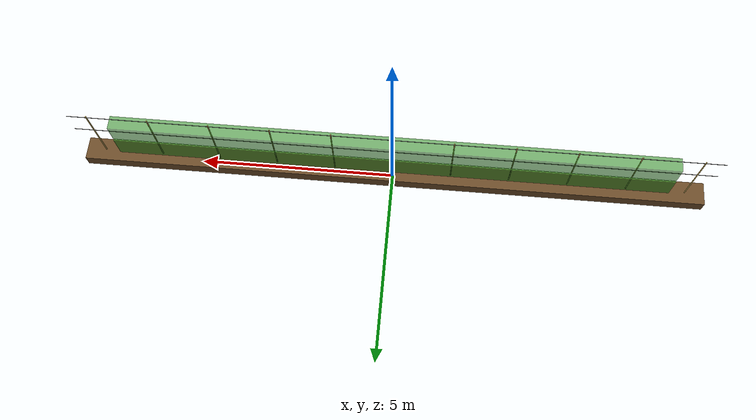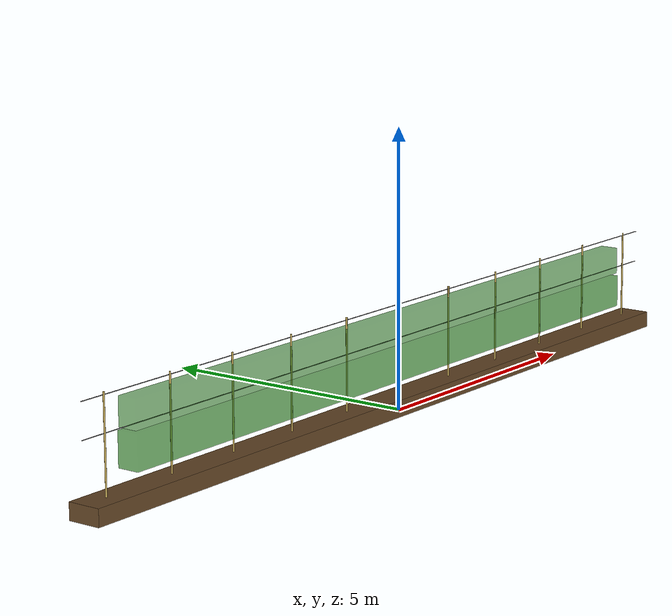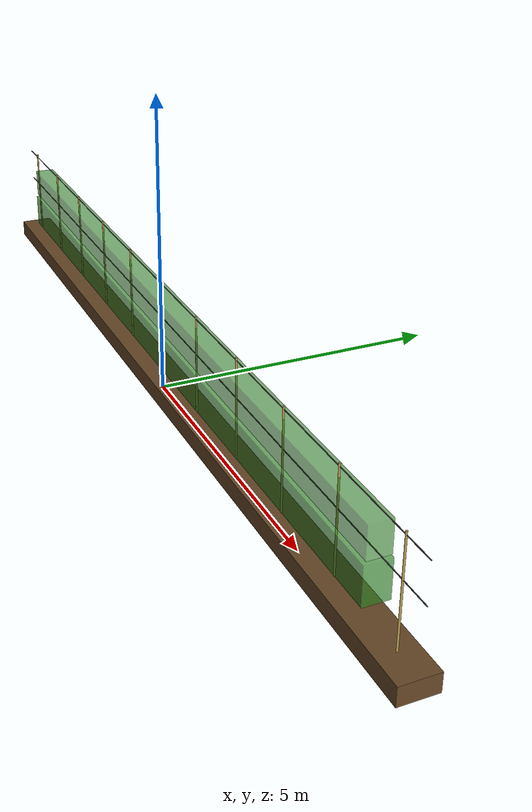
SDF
<?xml version="1.0" ?>
<!--
  黄瓜种植行模型 (Cucumber Row)
  长度: 16m (沿X轴), 高1.8m
  ★ 第十三次缩小: 36m→16m, 配合缩小后的大棚(20×12m)
  包含: 竹竿支撑 + 横向牵引线 + 叶片遮挡块
-->
<sdf version="1.6">
  <model name="cucumber_row">
    <static>true</static>

    <!-- 底部土垄 -->
    <link name="soil_ridge">
      <pose>0 0 0.15 0 0 0</pose>
      <collision name="c"><geometry><box><size>16 0.6 0.3</size></box></geometry></collision>
      <visual name="v"><geometry><box><size>16 0.6 0.3</size></box></geometry>
        <material><ambient>0.3 0.2 0.1 1</ambient><diffuse>0.4 0.28 0.15 1</diffuse></material>
      </visual>
    </link>

    <!-- 竹竿支撑 (每隔1.5m, 共11根, x从-7.5到7.5) -->
    <link name="stake_0"><pose>-7.5 0 1.05 0 0 0</pose><collision name="c"><geometry><cylinder><radius>0.015</radius><length>1.8</length></cylinder></geometry></collision><visual name="v"><geometry><cylinder><radius>0.015</radius><length>1.8</length></cylinder></geometry><material><ambient>0.6 0.5 0.2 1</ambient><diffuse>0.7 0.6 0.3 1</diffuse></material></visual></link>
    <link name="stake_1"><pose>-6.0 0 1.05 0 0 0</pose><collision name="c"><geometry><cylinder><radius>0.015</radius><length>1.8</length></cylinder></geometry></collision><visual name="v"><geometry><cylinder><radius>0.015</radius><length>1.8</length></cylinder></geometry><material><ambient>0.6 0.5 0.2 1</ambient><diffuse>0.7 0.6 0.3 1</diffuse></material></visual></link>
    <link name="stake_2"><pose>-4.5 0 1.05 0 0 0</pose><collision name="c"><geometry><cylinder><radius>0.015</radius><length>1.8</length></cylinder></geometry></collision><visual name="v"><geometry><cylinder><radius>0.015</radius><length>1.8</length></cylinder></geometry><material><ambient>0.6 0.5 0.2 1</ambient><diffuse>0.7 0.6 0.3 1</diffuse></material></visual></link>
    <link name="stake_3"><pose>-3.0 0 1.05 0 0 0</pose><collision name="c"><geometry><cylinder><radius>0.015</radius><length>1.8</length></cylinder></geometry></collision><visual name="v"><geometry><cylinder><radius>0.015</radius><length>1.8</length></cylinder></geometry><material><ambient>0.6 0.5 0.2 1</ambient><diffuse>0.7 0.6 0.3 1</diffuse></material></visual></link>
    <link name="stake_4"><pose>-1.5 0 1.05 0 0 0</pose><collision name="c"><geometry><cylinder><radius>0.015</radius><length>1.8</length></cylinder></geometry></collision><visual name="v"><geometry><cylinder><radius>0.015</radius><length>1.8</length></cylinder></geometry><material><ambient>0.6 0.5 0.2 1</ambient><diffuse>0.7 0.6 0.3 1</diffuse></material></visual></link>
    <link name="stake_5"><pose>0 0 1.05 0 0 0</pose><collision name="c"><geometry><cylinder><radius>0.015</radius><length>1.8</length></cylinder></geometry></collision><visual name="v"><geometry><cylinder><radius>0.015</radius><length>1.8</length></cylinder></geometry><material><ambient>0.6 0.5 0.2 1</ambient><diffuse>0.7 0.6 0.3 1</diffuse></material></visual></link>
    <link name="stake_6"><pose>1.5 0 1.05 0 0 0</pose><collision name="c"><geometry><cylinder><radius>0.015</radius><length>1.8</length></cylinder></geometry></collision><visual name="v"><geometry><cylinder><radius>0.015</radius><length>1.8</length></cylinder></geometry><material><ambient>0.6 0.5 0.2 1</ambient><diffuse>0.7 0.6 0.3 1</diffuse></material></visual></link>
    <link name="stake_7"><pose>3.0 0 1.05 0 0 0</pose><collision name="c"><geometry><cylinder><radius>0.015</radius><length>1.8</length></cylinder></geometry></collision><visual name="v"><geometry><cylinder><radius>0.015</radius><length>1.8</length></cylinder></geometry><material><ambient>0.6 0.5 0.2 1</ambient><diffuse>0.7 0.6 0.3 1</diffuse></material></visual></link>
    <link name="stake_8"><pose>4.5 0 1.05 0 0 0</pose><collision name="c"><geometry><cylinder><radius>0.015</radius><length>1.8</length></cylinder></geometry></collision><visual name="v"><geometry><cylinder><radius>0.015</radius><length>1.8</length></cylinder></geometry><material><ambient>0.6 0.5 0.2 1</ambient><diffuse>0.7 0.6 0.3 1</diffuse></material></visual></link>
    <link name="stake_9"><pose>6.0 0 1.05 0 0 0</pose><collision name="c"><geometry><cylinder><radius>0.015</radius><length>1.8</length></cylinder></geometry></collision><visual name="v"><geometry><cylinder><radius>0.015</radius><length>1.8</length></cylinder></geometry><material><ambient>0.6 0.5 0.2 1</ambient><diffuse>0.7 0.6 0.3 1</diffuse></material></visual></link>
    <link name="stake_10"><pose>7.5 0 1.05 0 0 0</pose><collision name="c"><geometry><cylinder><radius>0.015</radius><length>1.8</length></cylinder></geometry></collision><visual name="v"><geometry><cylinder><radius>0.015</radius><length>1.8</length></cylinder></geometry><material><ambient>0.6 0.5 0.2 1</ambient><diffuse>0.7 0.6 0.3 1</diffuse></material></visual></link>

    <!-- 上方横向牵引钢丝 -->
    <link name="top_wire"><pose>0 0 1.9 0 0 0</pose>
      <collision name="c"><geometry><box><size>16 0.01 0.01</size></box></geometry></collision>
      <visual name="v"><geometry><box><size>16 0.01 0.01</size></box></geometry><material><ambient>0.3 0.3 0.3 1</ambient><diffuse>0.4 0.4 0.4 1</diffuse></material></visual>
    </link>
    <link name="mid_wire"><pose>0 0 1.3 0 0 0</pose>
      <collision name="c"><geometry><box><size>16 0.01 0.01</size></box></geometry></collision>
      <visual name="v"><geometry><box><size>16 0.01 0.01</size></box></geometry><material><ambient>0.3 0.3 0.3 1</ambient><diffuse>0.4 0.4 0.4 1</diffuse></material></visual>
    </link>

    <!-- 叶片遮挡 -->
    <link name="foliage_low"><pose>0 0 0.9 0 0 0</pose>
      <collision name="c"><geometry><box><size>14 0.4 0.6</size></box></geometry></collision>
      <visual name="v"><geometry><box><size>14 0.4 0.6</size></box></geometry>
        <material><ambient>0.15 0.45 0.1 0.7</ambient><diffuse>0.2 0.55 0.15 0.7</diffuse></material>
        <transparency>0.3</transparency>
      </visual>
    </link>
    <link name="foliage_high"><pose>0 0 1.5 0 0 0</pose>
      <collision name="c"><geometry><box><size>14 0.35 0.5</size></box></geometry></collision>
      <visual name="v"><geometry><box><size>14 0.35 0.5</size></box></geometry>
        <material><ambient>0.1 0.4 0.08 0.6</ambient><diffuse>0.15 0.5 0.1 0.6</diffuse></material>
        <transparency>0.35</transparency>
      </visual>
    </link>

  </model>
</sdf>
